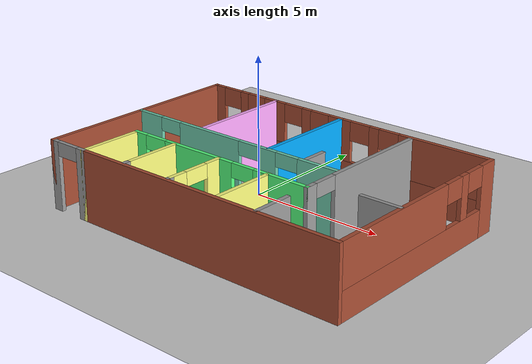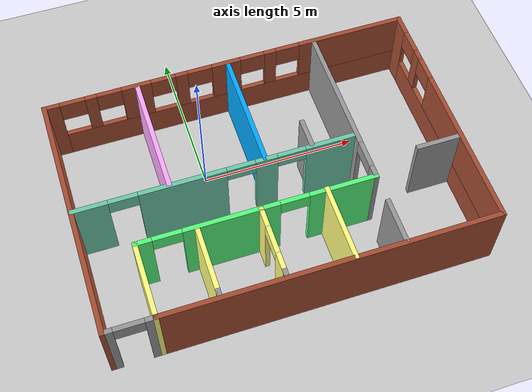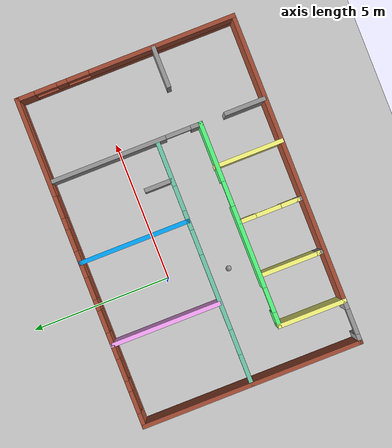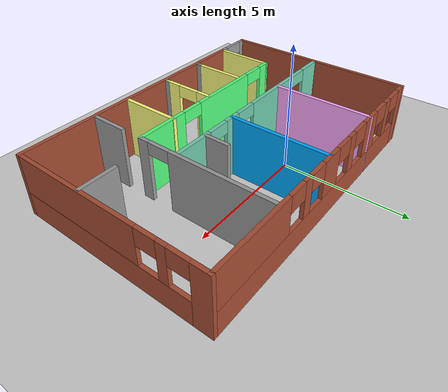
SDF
<sdf version="1.6">
 <world name="default">
  <light name="sun" type="directional">
   <pose>0 0 10 0 -0 0</pose>
   <diffuse>0.8 0.8 0.8 1</diffuse>
   <specular>0.2 0.2 0.2 1</specular>
   <attenuation>
    <range>1000</range>
    <constant>0.9</constant>
    <linear>0.01</linear>
    <quadratic>0.001</quadratic>
   </attenuation>
   <direction>-0.5 0.1 -0.9</direction>
  </light>
  <model name="ground_plane">
   <static>1</static>
   <link name="link">
    <collision name="collision">
     <geometry><plane><normal>0 0 1</normal><size>100 100</size></plane></geometry>
     <surface><friction><ode><mu>100</mu><mu2>50</mu2></ode></friction></surface>
    </collision>
    <visual name="visual">
     <cast_shadows>0</cast_shadows>
     <geometry><plane><normal>0 0 1</normal><size>100 100</size></plane></geometry>
     <material>
      <script><uri>file://media/materials/scripts/gazebo.material</uri><name>Gazebo/Grey</name></script>
     </material>
    </visual>
   </link>
  </model>
  <gravity>0 0 -9.8</gravity>
  <magnetic_field>6e-06 2.3e-05 -4.2e-05</magnetic_field>
  <atmosphere type="adiabatic"/>
  <physics name="default_physics" default="0" type="ode">
   <max_step_size>0.001</max_step_size>
   <real_time_factor>1</real_time_factor>
   <real_time_update_rate>1000</real_time_update_rate>
  </physics>
  <scene><ambient>0.4 0.4 0.4 1</ambient><background>0.7 0.7 0.7 1</background><shadows>1</shadows></scene>
  <spherical_coordinates>
   <surface_model>EARTH_WGS84</surface_model>
   <latitude_deg>0</latitude_deg>
   <longitude_deg>0</longitude_deg>
   <elevation>0</elevation>
   <heading_deg>0</heading_deg>
  </spherical_coordinates>
  <model name="NewBuilding">
   <pose>1.59889 -1.38345 0 0 -0 0</pose>
   <link name="Wall_10">
    <collision name="Wall_10_Collision">
     <geometry><box><size>8 0.15 2.5</size></box></geometry>
     <pose>0 0 1.25 0 -0 0</pose>
    </collision>
    <visual name="Wall_10_Visual">
     <pose>0 0 1.25 0 -0 0</pose>
     <geometry><box><size>8 0.15 2.5</size></box></geometry>
     <material>
      <script><uri>file://media/materials/scripts/gazebo.material</uri><name>Gazebo/Bricks</name></script>
      <ambient>1 1 1 1</ambient>
     </material>
     <meta><layer>0</layer></meta>
    </visual>
    <pose>-5.925 0 0 0 0 -1.5708</pose>
   </link>
   <link name="Wall_12">
    <collision name="Wall_12_Collision">
     <geometry><box><size>2.5 0.15 2.5</size></box></geometry>
     <pose>0 0 1.25 0 -0 0</pose>
    </collision>
    <visual name="Wall_12_Visual">
     <pose>0 0 1.25 0 -0 0</pose>
     <geometry><box><size>2.5 0.15 2.5</size></box></geometry>
     <material>
      <script><uri>file://media/materials/scripts/gazebo.material</uri><name>Gazebo/Grey</name></script>
      <ambient>1 1 0.498039 1</ambient>
     </material>
     <meta><layer>0</layer></meta>
    </visual>
    <pose>-4.425 -2.75 0 0 -0 1.5708</pose>
   </link>
   <link name="Wall_15">
    <pose>-0.75 -1.575 0 0 -0 0</pose>
    <visual name="Wall_15_Visual_0">
     <pose>-3.46389 0 1.25 0 -0 0</pose>
     <geometry><box><size>0.572218 0.15 2.5</size></box></geometry>
     <material>
      <script><uri>file://media/materials/scripts/gazebo.material</uri><name>Gazebo/Grey</name></script>
      <ambient>0.333333 1 0.498039 1</ambient>
     </material>
     <meta><layer>0</layer></meta>
    </visual>
    <collision name="Wall_15_Collision_0">
     <geometry><box><size>0.572218 0.15 2.5</size></box></geometry>
     <pose>-3.46389 0 1.25 0 -0 0</pose>
    </collision>
    <visual name="Wall_15_Visual_1">
     <pose>-0.799267 0 1.25 0 -0 0</pose>
     <geometry><box><size>2.95703 0.15 2.5</size></box></geometry>
     <material>
      <script><uri>file://media/materials/scripts/gazebo.material</uri><name>Gazebo/Grey</name></script>
      <ambient>0.333333 1 0.498039 1</ambient>
     </material>
     <meta><layer>0</layer></meta>
    </visual>
    <collision name="Wall_15_Collision_1">
     <geometry><box><size>2.95703 0.15 2.5</size></box></geometry>
     <pose>-0.799267 0 1.25 0 -0 0</pose>
    </collision>
    <visual name="Wall_15_Visual_2">
     <pose>2.66462 0 1.25 0 -0 0</pose>
     <geometry><box><size>2.17075 0.15 2.5</size></box></geometry>
     <material>
      <script><uri>file://media/materials/scripts/gazebo.material</uri><name>Gazebo/Grey</name></script>
      <ambient>0.333333 1 0.498039 1</ambient>
     </material>
     <meta><layer>0</layer></meta>
    </visual>
    <collision name="Wall_15_Collision_2">
     <geometry><box><size>2.17075 0.15 2.5</size></box></geometry>
     <pose>2.66462 0 1.25 0 -0 0</pose>
    </collision>
    <visual name="Wall_15_Visual_3">
     <pose>-2.72778 0 2.25 0 -0 0</pose>
     <geometry><box><size>0.9 0.15 0.5</size></box></geometry>
     <material>
      <script><uri>file://media/materials/scripts/gazebo.material</uri><name>Gazebo/Grey</name></script>
      <ambient>0.333333 1 0.498039 1</ambient>
     </material>
     <meta><layer>0</layer></meta>
    </visual>
    <collision name="Wall_15_Collision_3">
     <geometry><box><size>0.9 0.15 0.5</size></box></geometry>
     <pose>-2.72778 0 2.25 0 -0 0</pose>
    </collision>
    <visual name="Wall_15_Visual_4">
     <pose>1.12925 0 2.25 0 -0 0</pose>
     <geometry><box><size>0.9 0.15 0.5</size></box></geometry>
     <material>
      <script><uri>file://media/materials/scripts/gazebo.material</uri><name>Gazebo/Grey</name></script>
      <ambient>0.333333 1 0.498039 1</ambient>
     </material>
     <meta><layer>0</layer></meta>
    </visual>
    <collision name="Wall_15_Collision_4">
     <geometry><box><size>0.9 0.15 0.5</size></box></geometry>
     <pose>1.12925 0 2.25 0 -0 0</pose>
    </collision>
   </link>
   <link name="Wall_16">
    <pose>2.925 1.1 0 0 -0 1.5708</pose>
    <visual name="Wall_16_Visual_0">
     <pose>-2.52832 0 1.25 0 -0 0</pose>
     <geometry><box><size>0.443365 0.15 2.5</size></box></geometry>
     <material>
      <script><uri>file://media/materials/scripts/gazebo.material</uri><name>Gazebo/Grey</name></script>
      <ambient>0 0 0 1</ambient>
     </material>
     <meta><layer>0</layer></meta>
    </visual>
    <collision name="Wall_16_Collision_0">
     <geometry><box><size>0.443365 0.15 2.5</size></box></geometry>
     <pose>-2.52832 0 1.25 0 -0 0</pose>
    </collision>
    <visual name="Wall_16_Visual_1">
     <pose>0.671683 0 1.25 0 -0 0</pose>
     <geometry><box><size>4.15663 0.15 2.5</size></box></geometry>
     <material>
      <script><uri>file://media/materials/scripts/gazebo.material</uri><name>Gazebo/Grey</name></script>
      <ambient>0 0 0 1</ambient>
     </material>
     <meta><layer>0</layer></meta>
    </visual>
    <collision name="Wall_16_Collision_1">
     <geometry><box><size>4.15663 0.15 2.5</size></box></geometry>
     <pose>0.671683 0 1.25 0 -0 0</pose>
    </collision>
    <visual name="Wall_16_Visual_2">
     <pose>-1.85664 0 2.25 0 -0 0</pose>
     <geometry><box><size>0.9 0.15 0.5</size></box></geometry>
     <material>
      <script><uri>file://media/materials/scripts/gazebo.material</uri><name>Gazebo/Grey</name></script>
      <ambient>0 0 0 1</ambient>
     </material>
     <meta><layer>0</layer></meta>
    </visual>
    <collision name="Wall_16_Collision_2">
     <geometry><box><size>0.9 0.15 0.5</size></box></geometry>
     <pose>-1.85664 0 2.25 0 -0 0</pose>
    </collision>
   </link>
   <link name="Wall_18">
    <collision name="Wall_18_Collision">
     <geometry><box><size>4 0.15 2.5</size></box></geometry>
     <pose>0 0 1.25 0 -0 0</pose>
    </collision>
    <visual name="Wall_18_Visual">
     <pose>0 0 1.25 0 -0 0</pose>
     <geometry><box><size>4 0.15 2.5</size></box></geometry>
     <material>
      <script><uri>file://media/materials/scripts/gazebo.material</uri><name>Gazebo/Grey</name></script>
      <ambient>0 0.666667 1 1</ambient>
     </material>
     <meta><layer>0</layer></meta>
    </visual>
    <pose>0.006845 1.9734 0 0 0 -1.5708</pose>
   </link>
   <link name="Wall_20">
    <collision name="Wall_20_Collision">
     <geometry><box><size>4 0.15 2.5</size></box></geometry>
     <pose>0 0 1.25 0 -0 0</pose>
    </collision>
    <visual name="Wall_20_Visual">
     <pose>0 0 1.25 0 -0 0</pose>
     <geometry><box><size>4 0.15 2.5</size></box></geometry>
     <material>
      <script><uri>file://media/materials/scripts/gazebo.material</uri><name>Gazebo/Grey</name></script>
      <ambient>1 0.666667 1 1</ambient>
     </material>
     <meta><layer>0</layer></meta>
    </visual>
    <pose>-2.97238 2 0 0 0 -1.5708</pose>
   </link>
   <link name="Wall_22">
    <pose>-1.5234 0.014771 0 0 -0 0</pose>
    <visual name="Wall_22_Visual_0">
     <pose>-3.87939 0 1.25 0 -0 0</pose>
     <geometry><box><size>1.14121 0.15 2.5</size></box></geometry>
     <material>
      <script><uri>file://media/materials/scripts/gazebo.material</uri><name>Gazebo/Grey</name></script>
      <ambient>0.435294 0.796078 0.67451 1</ambient>
     </material>
     <meta><layer>0</layer></meta>
    </visual>
    <collision name="Wall_22_Collision_0">
     <geometry><box><size>1.14121 0.15 2.5</size></box></geometry>
     <pose>-3.87939 0 1.25 0 -0 0</pose>
    </collision>
    <visual name="Wall_22_Visual_1">
     <pose>-1.04998 0 1.25 0 -0 0</pose>
     <geometry><box><size>2.71763 0.15 2.5</size></box></geometry>
     <material>
      <script><uri>file://media/materials/scripts/gazebo.material</uri><name>Gazebo/Grey</name></script>
      <ambient>0.435294 0.796078 0.67451 1</ambient>
     </material>
     <meta><layer>0</layer></meta>
    </visual>
    <collision name="Wall_22_Collision_1">
     <geometry><box><size>2.71763 0.15 2.5</size></box></geometry>
     <pose>-1.04998 0 1.25 0 -0 0</pose>
    </collision>
    <visual name="Wall_22_Visual_2">
     <pose>1.55684 0 1.25 0 -0 0</pose>
     <geometry><box><size>0.696012 0.15 2.5</size></box></geometry>
     <material>
      <script><uri>file://media/materials/scripts/gazebo.material</uri><name>Gazebo/Grey</name></script>
      <ambient>0.435294 0.796078 0.67451 1</ambient>
     </material>
     <meta><layer>0</layer></meta>
    </visual>
    <collision name="Wall_22_Collision_2">
     <geometry><box><size>0.696012 0.15 2.5</size></box></geometry>
     <pose>1.55684 0 1.25 0 -0 0</pose>
    </collision>
    <visual name="Wall_22_Visual_3">
     <pose>3.62743 0 1.25 0 -0 0</pose>
     <geometry><box><size>1.64515 0.15 2.5</size></box></geometry>
     <material>
      <script><uri>file://media/materials/scripts/gazebo.material</uri><name>Gazebo/Grey</name></script>
      <ambient>0.435294 0.796078 0.67451 1</ambient>
     </material>
     <meta><layer>0</layer></meta>
    </visual>
    <collision name="Wall_22_Collision_3">
     <geometry><box><size>1.64515 0.15 2.5</size></box></geometry>
     <pose>3.62743 0 1.25 0 -0 0</pose>
    </collision>
    <visual name="Wall_22_Visual_4">
     <pose>-2.85879 0 2.25 0 -0 0</pose>
     <geometry><box><size>0.9 0.15 0.5</size></box></geometry>
     <material>
      <script><uri>file://media/materials/scripts/gazebo.material</uri><name>Gazebo/Grey</name></script>
      <ambient>0.435294 0.796078 0.67451 1</ambient>
     </material>
     <meta><layer>0</layer></meta>
    </visual>
    <collision name="Wall_22_Collision_4">
     <geometry><box><size>0.9 0.15 0.5</size></box></geometry>
     <pose>-2.85879 0 2.25 0 -0 0</pose>
    </collision>
    <visual name="Wall_22_Visual_5">
     <pose>0.758838 0 2.25 0 -0 0</pose>
     <geometry><box><size>0.9 0.15 0.5</size></box></geometry>
     <material>
      <script><uri>file://media/materials/scripts/gazebo.material</uri><name>Gazebo/Grey</name></script>
      <ambient>0.435294 0.796078 0.67451 1</ambient>
     </material>
     <meta><layer>0</layer></meta>
    </visual>
    <collision name="Wall_22_Collision_5">
     <geometry><box><size>0.9 0.15 0.5</size></box></geometry>
     <pose>0.758838 0 2.25 0 -0 0</pose>
    </collision>
    <visual name="Wall_22_Visual_6">
     <pose>2.35485 0 2.25 0 -0 0</pose>
     <geometry><box><size>0.9 0.15 0.5</size></box></geometry>
     <material>
      <script><uri>file://media/materials/scripts/gazebo.material</uri><name>Gazebo/Grey</name></script>
      <ambient>0.435294 0.796078 0.67451 1</ambient>
     </material>
     <meta><layer>0</layer></meta>
    </visual>
    <collision name="Wall_22_Collision_6">
     <geometry><box><size>0.9 0.15 0.5</size></box></geometry>
     <pose>2.35485 0 2.25 0 -0 0</pose>
    </collision>
   </link>
   <link name="Wall_24">
    <collision name="Wall_24_Collision">
     <geometry><box><size>2.25 0.15 2.5</size></box></geometry>
     <pose>0 0 1.25 0 -0 0</pose>
    </collision>
    <visual name="Wall_24_Visual">
     <pose>0 0 1.25 0 -0 0</pose>
     <geometry><box><size>2.25 0.15 2.5</size></box></geometry>
     <material>
      <script><uri>file://media/materials/scripts/gazebo.material</uri><name>Gazebo/Grey</name></script>
      <ambient>1 1 0.498039 1</ambient>
     </material>
     <meta><layer>0</layer></meta>
    </visual>
    <pose>-2.59998 -2.65784 0 0 0 -1.5708</pose>
   </link>
   <link name="Wall_25">
    <collision name="Wall_25_Collision">
     <geometry><box><size>0.25 0.15 2.5</size></box></geometry>
     <pose>0 0 1.25 0 -0 0</pose>
    </collision>
    <visual name="Wall_25_Visual">
     <pose>0 0 1.25 0 -0 0</pose>
     <geometry><box><size>0.25 0.15 2.5</size></box></geometry>
     <material>
      <script><uri>file://media/materials/scripts/gazebo.material</uri><name>Gazebo/Grey</name></script>
      <ambient>1 1 1 1</ambient>
     </material>
     <meta><layer>0</layer></meta>
    </visual>
    <pose>-2.59998 -3.75784 0 0 0 -1.5708</pose>
   </link>
   <link name="Wall_27">
    <pose>-0.65816 -2.65784 0 0 0 -1.5708</pose>
    <visual name="Wall_27_Visual_0">
     <pose>-0.793796 0 1.25 0 -0 0</pose>
     <geometry><box><size>0.662408 0.15 2.5</size></box></geometry>
     <material>
      <script><uri>file://media/materials/scripts/gazebo.material</uri><name>Gazebo/Grey</name></script>
      <ambient>1 1 0.498039 1</ambient>
     </material>
     <meta><layer>0</layer></meta>
    </visual>
    <collision name="Wall_27_Collision_0">
     <geometry><box><size>0.662408 0.15 2.5</size></box></geometry>
     <pose>-0.793796 0 1.25 0 -0 0</pose>
    </collision>
    <visual name="Wall_27_Visual_1">
     <pose>0.781204 0 1.25 0 -0 0</pose>
     <geometry><box><size>0.687592 0.15 2.5</size></box></geometry>
     <material>
      <script><uri>file://media/materials/scripts/gazebo.material</uri><name>Gazebo/Grey</name></script>
      <ambient>1 1 0.498039 1</ambient>
     </material>
     <meta><layer>0</layer></meta>
    </visual>
    <collision name="Wall_27_Collision_1">
     <geometry><box><size>0.687592 0.15 2.5</size></box></geometry>
     <pose>0.781204 0 1.25 0 -0 0</pose>
    </collision>
    <visual name="Wall_27_Visual_2">
     <pose>-0.012592 0 2.25 0 -0 0</pose>
     <geometry><box><size>0.9 0.15 0.5</size></box></geometry>
     <material>
      <script><uri>file://media/materials/scripts/gazebo.material</uri><name>Gazebo/Grey</name></script>
      <ambient>1 1 0.498039 1</ambient>
     </material>
     <meta><layer>0</layer></meta>
    </visual>
    <collision name="Wall_27_Collision_2">
     <geometry><box><size>0.9 0.15 0.5</size></box></geometry>
     <pose>-0.012592 0 2.25 0 -0 0</pose>
    </collision>
   </link>
   <link name="Wall_28">
    <collision name="Wall_28_Collision">
     <geometry><box><size>0.25 0.15 2.5</size></box></geometry>
     <pose>0 0 1.25 0 -0 0</pose>
    </collision>
    <visual name="Wall_28_Visual">
     <pose>0 0 1.25 0 -0 0</pose>
     <geometry><box><size>0.25 0.15 2.5</size></box></geometry>
     <material>
      <script><uri>file://media/materials/scripts/gazebo.material</uri><name>Gazebo/Grey</name></script>
      <ambient>1 1 1 1</ambient>
     </material>
     <meta><layer>0</layer></meta>
    </visual>
    <pose>-0.65816 -3.75784 0 0 0 -1.5708</pose>
   </link>
   <link name="Wall_3">
    <pose>0 3.925 0 0 -0 0</pose>
    <visual name="Wall_3_Visual_0">
     <pose>-5.7236 0 1.25 0 -0 0</pose>
     <geometry><box><size>0.552806 0.15 2.5</size></box></geometry>
     <material>
      <script><uri>file://media/materials/scripts/gazebo.material</uri><name>Gazebo/Bricks</name></script>
      <ambient>1 1 1 1</ambient>
     </material>
     <meta><layer>0</layer></meta>
    </visual>
    <collision name="Wall_3_Collision_0">
     <geometry><box><size>0.552806 0.15 2.5</size></box></geometry>
     <pose>-5.7236 0 1.25 0 -0 0</pose>
    </collision>
    <visual name="Wall_3_Visual_1">
     <pose>0.276403 0 0.5 0 -0 0</pose>
     <geometry><box><size>11.4472 0.15 1</size></box></geometry>
     <material>
      <script><uri>file://media/materials/scripts/gazebo.material</uri><name>Gazebo/Bricks</name></script>
      <ambient>1 1 1 1</ambient>
     </material>
     <meta><layer>0</layer></meta>
    </visual>
    <collision name="Wall_3_Collision_1">
     <geometry><box><size>11.4472 0.15 1</size></box></geometry>
     <pose>0.276403 0 0.5 0 -0 0</pose>
    </collision>
    <visual name="Wall_3_Visual_2">
     <pose>-4.46199 0 1.75 0 -0 0</pose>
     <geometry><box><size>0.370409 0.15 1.5</size></box></geometry>
     <material>
      <script><uri>file://media/materials/scripts/gazebo.material</uri><name>Gazebo/Bricks</name></script>
      <ambient>1 1 1 1</ambient>
     </material>
     <meta><layer>0</layer></meta>
    </visual>
    <collision name="Wall_3_Collision_2">
     <geometry><box><size>0.370409 0.15 1.5</size></box></geometry>
     <pose>-4.46199 0 1.75 0 -0 0</pose>
    </collision>
    <visual name="Wall_3_Visual_3">
     <pose>-2.99898 0 1.75 0 -0 0</pose>
     <geometry><box><size>0.955613 0.15 1.5</size></box></geometry>
     <material>
      <script><uri>file://media/materials/scripts/gazebo.material</uri><name>Gazebo/Bricks</name></script>
      <ambient>1 1 1 1</ambient>
     </material>
     <meta><layer>0</layer></meta>
    </visual>
    <collision name="Wall_3_Collision_3">
     <geometry><box><size>0.955613 0.15 1.5</size></box></geometry>
     <pose>-2.99898 0 1.75 0 -0 0</pose>
    </collision>
    <visual name="Wall_3_Visual_4">
     <pose>-1.52267 0 1.75 0 -0 0</pose>
     <geometry><box><size>0.397009 0.15 1.5</size></box></geometry>
     <material>
      <script><uri>file://media/materials/scripts/gazebo.material</uri><name>Gazebo/Bricks</name></script>
      <ambient>1 1 1 1</ambient>
     </material>
     <meta><layer>0</layer></meta>
    </visual>
    <collision name="Wall_3_Collision_4">
     <geometry><box><size>0.397009 0.15 1.5</size></box></geometry>
     <pose>-1.52267 0 1.75 0 -0 0</pose>
    </collision>
    <visual name="Wall_3_Visual_5">
     <pose>-0.046356 0 1.75 0 -0 0</pose>
     <geometry><box><size>0.955613 0.15 1.5</size></box></geometry>
     <material>
      <script><uri>file://media/materials/scripts/gazebo.material</uri><name>Gazebo/Bricks</name></script>
      <ambient>1 1 1 1</ambient>
     </material>
     <meta><layer>0</layer></meta>
    </visual>
    <collision name="Wall_3_Collision_5">
     <geometry><box><size>0.955613 0.15 1.5</size></box></geometry>
     <pose>-0.046356 0 1.75 0 -0 0</pose>
    </collision>
    <visual name="Wall_3_Visual_6">
     <pose>1.42996 0 1.75 0 -0 0</pose>
     <geometry><box><size>0.397009 0.15 1.5</size></box></geometry>
     <material>
      <script><uri>file://media/materials/scripts/gazebo.material</uri><name>Gazebo/Bricks</name></script>
      <ambient>1 1 1 1</ambient>
     </material>
     <meta><layer>0</layer></meta>
    </visual>
    <collision name="Wall_3_Collision_6">
     <geometry><box><size>0.397009 0.15 1.5</size></box></geometry>
     <pose>1.42996 0 1.75 0 -0 0</pose>
    </collision>
    <visual name="Wall_3_Visual_7">
     <pose>4.21423 0 1.75 0 -0 0</pose>
     <geometry><box><size>3.57154 0.15 1.5</size></box></geometry>
     <material>
      <script><uri>file://media/materials/scripts/gazebo.material</uri><name>Gazebo/Bricks</name></script>
      <ambient>1 1 1 1</ambient>
     </material>
     <meta><layer>0</layer></meta>
    </visual>
    <collision name="Wall_3_Collision_7">
     <geometry><box><size>3.57154 0.15 1.5</size></box></geometry>
     <pose>4.21423 0 1.75 0 -0 0</pose>
    </collision>
    <visual name="Wall_3_Visual_8">
     <pose>-5.04719 0 2.15 0 -0 0</pose>
     <geometry><box><size>0.8 0.15 0.7</size></box></geometry>
     <material>
      <script><uri>file://media/materials/scripts/gazebo.material</uri><name>Gazebo/Bricks</name></script>
      <ambient>1 1 1 1</ambient>
     </material>
     <meta><layer>0</layer></meta>
    </visual>
    <collision name="Wall_3_Collision_8">
     <geometry><box><size>0.8 0.15 0.7</size></box></geometry>
     <pose>-5.04719 0 2.15 0 -0 0</pose>
    </collision>
    <visual name="Wall_3_Visual_9">
     <pose>-3.87678 0 2.15 0 -0 0</pose>
     <geometry><box><size>0.8 0.15 0.7</size></box></geometry>
     <material>
      <script><uri>file://media/materials/scripts/gazebo.material</uri><name>Gazebo/Bricks</name></script>
      <ambient>1 1 1 1</ambient>
     </material>
     <meta><layer>0</layer></meta>
    </visual>
    <collision name="Wall_3_Collision_9">
     <geometry><box><size>0.8 0.15 0.7</size></box></geometry>
     <pose>-3.87678 0 2.15 0 -0 0</pose>
    </collision>
    <visual name="Wall_3_Visual_10">
     <pose>-2.12117 0 2.15 0 -0 0</pose>
     <geometry><box><size>0.8 0.15 0.7</size></box></geometry>
     <material>
      <script><uri>file://media/materials/scripts/gazebo.material</uri><name>Gazebo/Bricks</name></script>
      <ambient>1 1 1 1</ambient>
     </material>
     <meta><layer>0</layer></meta>
    </visual>
    <collision name="Wall_3_Collision_10">
     <geometry><box><size>0.8 0.15 0.7</size></box></geometry>
     <pose>-2.12117 0 2.15 0 -0 0</pose>
    </collision>
    <visual name="Wall_3_Visual_11">
     <pose>-0.924163 0 2.15 0 -0 0</pose>
     <geometry><box><size>0.8 0.15 0.7</size></box></geometry>
     <material>
      <script><uri>file://media/materials/scripts/gazebo.material</uri><name>Gazebo/Bricks</name></script>
      <ambient>1 1 1 1</ambient>
     </material>
     <meta><layer>0</layer></meta>
    </visual>
    <collision name="Wall_3_Collision_11">
     <geometry><box><size>0.8 0.15 0.7</size></box></geometry>
     <pose>-0.924163 0 2.15 0 -0 0</pose>
    </collision>
    <visual name="Wall_3_Visual_12">
     <pose>0.83145 0 2.15 0 -0 0</pose>
     <geometry><box><size>0.8 0.15 0.7</size></box></geometry>
     <material>
      <script><uri>file://media/materials/scripts/gazebo.material</uri><name>Gazebo/Bricks</name></script>
      <ambient>1 1 1 1</ambient>
     </material>
     <meta><layer>0</layer></meta>
    </visual>
    <collision name="Wall_3_Collision_12">
     <geometry><box><size>0.8 0.15 0.7</size></box></geometry>
     <pose>0.83145 0 2.15 0 -0 0</pose>
    </collision>
    <visual name="Wall_3_Visual_13">
     <pose>2.02846 0 2.15 0 -0 0</pose>
     <geometry><box><size>0.8 0.15 0.7</size></box></geometry>
     <material>
      <script><uri>file://media/materials/scripts/gazebo.material</uri><name>Gazebo/Bricks</name></script>
      <ambient>1 1 1 1</ambient>
     </material>
     <meta><layer>0</layer></meta>
    </visual>
    <collision name="Wall_3_Collision_13">
     <geometry><box><size>0.8 0.15 0.7</size></box></geometry>
     <pose>2.02846 0 2.15 0 -0 0</pose>
    </collision>
   </link>
   <link name="Wall_30">
    <collision name="Wall_30_Collision">
     <geometry><box><size>2.5 0.15 2.5</size></box></geometry>
     <pose>0 0 1.25 0 -0 0</pose>
    </collision>
    <visual name="Wall_30_Visual">
     <pose>0 0 1.25 0 -0 0</pose>
     <geometry><box><size>2.5 0.15 2.5</size></box></geometry>
     <material>
      <script><uri>file://media/materials/scripts/gazebo.material</uri><name>Gazebo/Grey</name></script>
      <ambient>1 1 0.498039 1</ambient>
     </material>
     <meta><layer>0</layer></meta>
    </visual>
    <pose>1.39006 -2.72964 0 0 0 -1.5708</pose>
   </link>
   <link name="Wall_32">
    <collision name="Wall_32_Collision">
     <geometry><box><size>1.5 0.15 2.5</size></box></geometry>
     <pose>0 0 1.25 0 -0 0</pose>
    </collision>
    <visual name="Wall_32_Visual">
     <pose>0 0 1.25 0 -0 0</pose>
     <geometry><box><size>1.5 0.15 2.5</size></box></geometry>
     <material>
      <script><uri>file://media/materials/scripts/gazebo.material</uri><name>Gazebo/Grey</name></script>
      <ambient>1 1 1 1</ambient>
     </material>
     <meta><layer>0</layer></meta>
    </visual>
    <pose>2.93287 -3.18725 0 0 0 -1.5708</pose>
   </link>
   <link name="Wall_34">
    <collision name="Wall_34_Collision">
     <geometry><box><size>1.5 0.15 2.5</size></box></geometry>
     <pose>0 0 1.25 0 -0 0</pose>
    </collision>
    <visual name="Wall_34_Visual">
     <pose>0 0 1.25 0 -0 0</pose>
     <geometry><box><size>1.5 0.15 2.5</size></box></geometry>
     <material>
      <script><uri>file://media/materials/scripts/gazebo.material</uri><name>Gazebo/Grey</name></script>
      <ambient>1 1 1 1</ambient>
     </material>
     <meta><layer>0</layer></meta>
    </visual>
    <pose>5.20388 -1.02264 0 0 -0 0</pose>
   </link>
   <link name="Wall_36">
    <collision name="Wall_36_Collision">
     <geometry><box><size>1 0.15 2.5</size></box></geometry>
     <pose>0 0 1.25 0 -0 0</pose>
    </collision>
    <visual name="Wall_36_Visual">
     <pose>0 0 1.25 0 -0 0</pose>
     <geometry><box><size>1 0.15 2.5</size></box></geometry>
     <material>
      <script><uri>file://media/materials/scripts/gazebo.material</uri><name>Gazebo/Grey</name></script>
      <ambient>1 1 1 1</ambient>
     </material>
     <meta><layer>0</layer></meta>
    </visual>
    <pose>1.49646 0.520778 0 0 0 -1.5708</pose>
   </link>
   <link name="Wall_38">
    <pose>-5.175 -3.925 0 0 -0 0</pose>
    <visual name="Wall_38_Visual_0">
     <pose>-0.640097 0 1.25 0 -0 0</pose>
     <geometry><box><size>0.369805 0.15 2.5</size></box></geometry>
     <material>
      <script><uri>file://media/materials/scripts/gazebo.material</uri><name>Gazebo/Grey</name></script>
      <ambient>0 0 0 1</ambient>
     </material>
     <meta><layer>0</layer></meta>
    </visual>
    <collision name="Wall_38_Collision_0">
     <geometry><box><size>0.369805 0.15 2.5</size></box></geometry>
     <pose>-0.640097 0 1.25 0 -0 0</pose>
    </collision>
    <visual name="Wall_38_Visual_1">
     <pose>0.634903 0 1.25 0 -0 0</pose>
     <geometry><box><size>0.380195 0.15 2.5</size></box></geometry>
     <material>
      <script><uri>file://media/materials/scripts/gazebo.material</uri><name>Gazebo/Grey</name></script>
      <ambient>0 0 0 1</ambient>
     </material>
     <meta><layer>0</layer></meta>
    </visual>
    <collision name="Wall_38_Collision_1">
     <geometry><box><size>0.380195 0.15 2.5</size></box></geometry>
     <pose>0.634903 0 1.25 0 -0 0</pose>
    </collision>
    <visual name="Wall_38_Visual_2">
     <pose>-0.005195 0 2.25 0 -0 0</pose>
     <geometry><box><size>0.9 0.15 0.5</size></box></geometry>
     <material>
      <script><uri>file://media/materials/scripts/gazebo.material</uri><name>Gazebo/Grey</name></script>
      <ambient>0 0 0 1</ambient>
     </material>
     <meta><layer>0</layer></meta>
    </visual>
    <collision name="Wall_38_Collision_2">
     <geometry><box><size>0.9 0.15 0.5</size></box></geometry>
     <pose>-0.005195 0 2.25 0 -0 0</pose>
    </collision>
   </link>
   <link name="Wall_4">
    <pose>5.925 0 0 0 0 -1.5708</pose>
    <visual name="Wall_4_Visual_0">
     <pose>-3.6438 0 1.25 0 -0 0</pose>
     <geometry><box><size>0.712408 0.15 2.5</size></box></geometry>
     <material>
      <script><uri>file://media/materials/scripts/gazebo.material</uri><name>Gazebo/Bricks</name></script>
      <ambient>1 1 1 1</ambient>
     </material>
     <meta><layer>0</layer></meta>
    </visual>
    <collision name="Wall_4_Collision_0">
     <geometry><box><size>0.712408 0.15 2.5</size></box></geometry>
     <pose>-3.6438 0 1.25 0 -0 0</pose>
    </collision>
    <visual name="Wall_4_Visual_1">
     <pose>0.356204 0 0.5 0 -0 0</pose>
     <geometry><box><size>7.28759 0.15 1</size></box></geometry>
     <material>
      <script><uri>file://media/materials/scripts/gazebo.material</uri><name>Gazebo/Bricks</name></script>
      <ambient>1 1 1 1</ambient>
     </material>
     <meta><layer>0</layer></meta>
    </visual>
    <collision name="Wall_4_Collision_1">
     <geometry><box><size>7.28759 0.15 1</size></box></geometry>
     <pose>0.356204 0 0.5 0 -0 0</pose>
    </collision>
    <visual name="Wall_4_Visual_2">
     <pose>-2.30239 0 1.75 0 -0 0</pose>
     <geometry><box><size>0.370409 0.15 1.5</size></box></geometry>
     <material>
      <script><uri>file://media/materials/scripts/gazebo.material</uri><name>Gazebo/Bricks</name></script>
      <ambient>1 1 1 1</ambient>
     </material>
     <meta><layer>0</layer></meta>
    </visual>
    <collision name="Wall_4_Collision_2">
     <geometry><box><size>0.370409 0.15 1.5</size></box></geometry>
     <pose>-2.30239 0 1.75 0 -0 0</pose>
    </collision>
    <visual name="Wall_4_Visual_3">
     <pose>1.34141 0 1.75 0 -0 0</pose>
     <geometry><box><size>5.31718 0.15 1.5</size></box></geometry>
     <material>
      <script><uri>file://media/materials/scripts/gazebo.material</uri><name>Gazebo/Bricks</name></script>
      <ambient>1 1 1 1</ambient>
     </material>
     <meta><layer>0</layer></meta>
    </visual>
    <collision name="Wall_4_Collision_3">
     <geometry><box><size>5.31718 0.15 1.5</size></box></geometry>
     <pose>1.34141 0 1.75 0 -0 0</pose>
    </collision>
    <visual name="Wall_4_Visual_4">
     <pose>-2.88759 0 2.15 0 -0 0</pose>
     <geometry><box><size>0.8 0.15 0.7</size></box></geometry>
     <material>
      <script><uri>file://media/materials/scripts/gazebo.material</uri><name>Gazebo/Bricks</name></script>
      <ambient>1 1 1 1</ambient>
     </material>
     <meta><layer>0</layer></meta>
    </visual>
    <collision name="Wall_4_Collision_4">
     <geometry><box><size>0.8 0.15 0.7</size></box></geometry>
     <pose>-2.88759 0 2.15 0 -0 0</pose>
    </collision>
    <visual name="Wall_4_Visual_5">
     <pose>-1.71718 0 2.15 0 -0 0</pose>
     <geometry><box><size>0.8 0.15 0.7</size></box></geometry>
     <material>
      <script><uri>file://media/materials/scripts/gazebo.material</uri><name>Gazebo/Bricks</name></script>
      <ambient>1 1 1 1</ambient>
     </material>
     <meta><layer>0</layer></meta>
    </visual>
    <collision name="Wall_4_Collision_5">
     <geometry><box><size>0.8 0.15 0.7</size></box></geometry>
     <pose>-1.71718 0 2.15 0 -0 0</pose>
    </collision>
   </link>
   <link name="Wall_5">
    <collision name="Wall_5_Collision">
     <geometry><box><size>10.5 0.15 2.5</size></box></geometry>
     <pose>0 0 1.25 0 -0 0</pose>
    </collision>
    <visual name="Wall_5_Visual">
     <pose>0 0 1.25 0 -0 0</pose>
     <geometry><box><size>10.5 0.15 2.5</size></box></geometry>
     <material>
      <script><uri>file://media/materials/scripts/gazebo.material</uri><name>Gazebo/Bricks</name></script>
      <ambient>1 1 1 1</ambient>
     </material>
     <meta><layer>0</layer></meta>
    </visual>
    <pose>0.75 -3.925 0 0 -0 3.14159</pose>
   </link>
   <static>1</static>
  </model>
  <model name="my_ball">
   <link name="link_0">
    <inertial>
     <mass>1</mass>
     <inertia><ixx>0.1</ixx><ixy>0</ixy><ixz>0</ixz><iyy>0.1</iyy><iyz>0</iyz><izz>0.1</izz></inertia>
    </inertial>
    <visual name="visual">
     <geometry><sphere><radius>0.1</radius></sphere></geometry>
     <material>
      <lighting>1</lighting>
      <script><uri>file://media/materials/scripts/gazebo.material</uri><name>Gazebo/Grey</name></script>
      <shader type="pixel"><normal_map>__default__</normal_map></shader>
      <ambient>1 1 1 1</ambient>
      <diffuse>1 1 1 1</diffuse>
      <specular>1 1 1 1</specular>
      <emissive>1 1 1 1</emissive>
     </material>
    </visual>
    <collision name="collision">
     <geometry><sphere><radius>0.1</radius></sphere></geometry>
     <surface>
      <friction>
       <ode><mu>1</mu><mu2>1</mu2><fdir1>0 0 0</fdir1><slip1>0</slip1><slip2>0</slip2></ode>
       <torsional>
        <coefficient>1</coefficient>
        <patch_radius>0</patch_radius>
        <surface_radius>0</surface_radius>
        <use_patch_radius>1</use_patch_radius>
        <ode><slip>0</slip></ode>
       </torsional>
      </friction>
      <bounce><restitution_coefficient>0</restitution_coefficient><threshold>1e+06</threshold></bounce>
      <contact>
       <collide_without_contact>0</collide_without_contact>
       <collide_without_contact_bitmask>1</collide_without_contact_bitmask>
       <collide_bitmask>1</collide_bitmask>
       <ode>
        <soft_cfm>0</soft_cfm>
        <soft_erp>0.2</soft_erp>
        <kp>1e+13</kp>
        <kd>1</kd>
        <max_vel>0.01</max_vel>
        <min_depth>0</min_depth>
       </ode>
       <bullet>
        <split_impulse>1</split_impulse>
        <split_impulse_penetration_threshold>-0.01</split_impulse_penetration_threshold>
        <soft_cfm>0</soft_cfm>
        <soft_erp>0.2</soft_erp>
        <kp>1e+13</kp>
        <kd>1</kd>
       </bullet>
      </contact>
     </surface>
    </collision>
   </link>
   <static>0</static>
   <pose>-0.447894 -2.08685 0.1 0 -0 0</pose>
  </model>
 </world>
</sdf>
